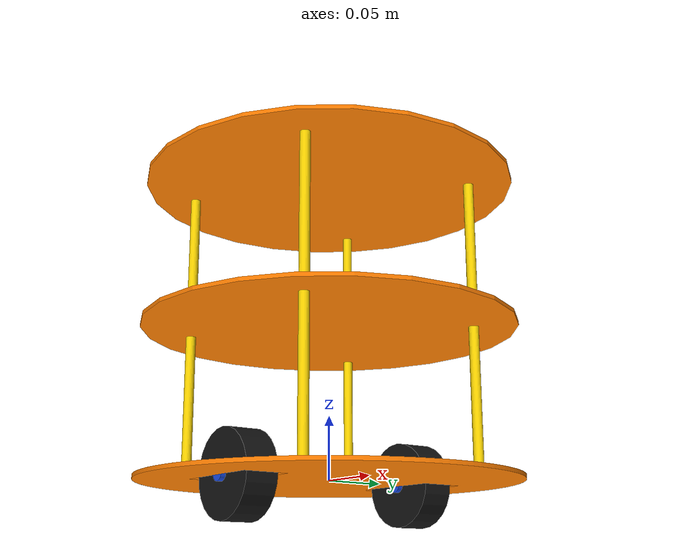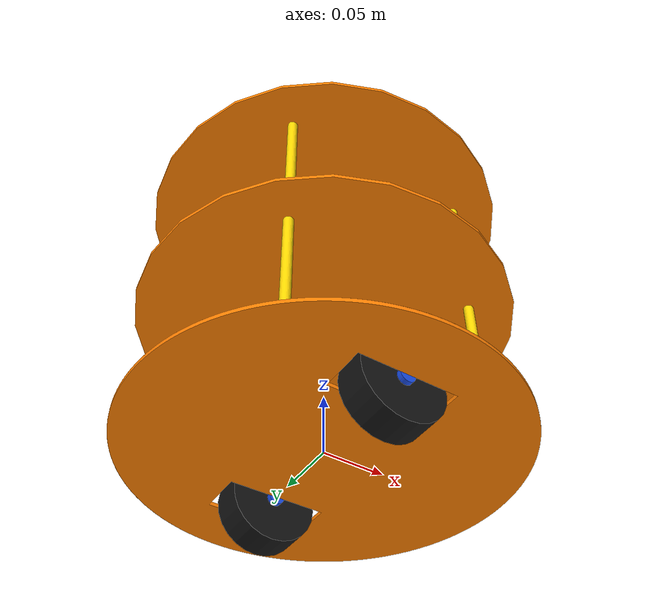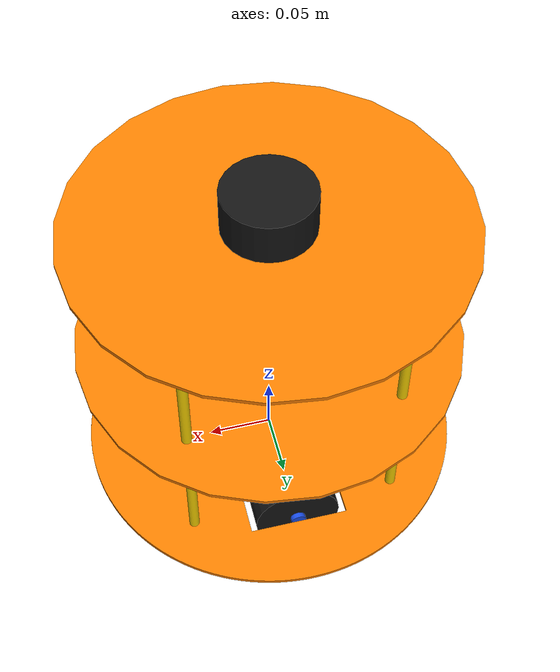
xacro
<?xml version="1.0"?>

<robot name="slam_robot" xmlns:xacro="http://www.ros.org/wiki/xacro">

  <material name="orange"><color rgba="1.0 0.5 0.0 1"/></material>
  <material name="yellow"><color rgba="1.0 0.85 0.0 1"/></material>
  <material name="black"><color rgba="0.08 0.08 0.08 1"/></material>
  <material name="blue"><color rgba="0.1 0.3 0.9 1"/></material>

  <link name="base_link">
    <visual name="level_1_plate">
      <origin xyz="0.00000 0.00000 0.00000" rpy="0 0 0"/>
      <geometry><mesh filename="package://myrobot_sim/meshes/bottom_plate.stl"/></geometry>
      <material name="orange"/>
    </visual>
    <collision name="level_1_plate_col">
      <origin xyz="0.00000 0.00000 0.00000" rpy="0 0 0"/>
      <geometry><mesh filename="package://myrobot_sim/meshes/bottom_plate.stl"/></geometry>
    </collision>
    <visual name="level_2_plate">
      <origin xyz="0.00000 0.00000 0.12000" rpy="0 0 0"/>
      <geometry><cylinder radius="0.15" length="0.00300"/></geometry>
      <material name="orange"/>
    </visual>
    <collision name="level_2_plate_col">
      <origin xyz="0.00000 0.00000 0.12000" rpy="0 0 0"/>
      <geometry><cylinder radius="0.15" length="0.00300"/></geometry>
    </collision>
    <visual name="level_3_plate">
      <origin xyz="0.00000 0.00000 0.24000" rpy="0 0 0"/>
      <geometry><cylinder radius="0.15" length="0.00300"/></geometry>
      <material name="orange"/>
    </visual>
    <collision name="level_3_plate_col">
      <origin xyz="0.00000 0.00000 0.24000" rpy="0 0 0"/>
      <geometry><cylinder radius="0.15" length="0.00300"/></geometry>
    </collision>
    <visual name="pcb_stand_1">
      <origin xyz="0.08132 0.08132 0.12000" rpy="0 0 0"/>
      <geometry><cylinder radius="0.004" length="0.24000"/></geometry>
      <material name="yellow"/>
    </visual>
    <collision name="pcb_stand_1_col">
      <origin xyz="0.08132 0.08132 0.12000" rpy="0 0 0"/>
      <geometry><cylinder radius="0.004" length="0.24000"/></geometry>
    </collision>
    <visual name="pcb_stand_2">
      <origin xyz="-0.08132 0.08132 0.12000" rpy="0 0 0"/>
      <geometry><cylinder radius="0.004" length="0.24000"/></geometry>
      <material name="yellow"/>
    </visual>
    <collision name="pcb_stand_2_col">
      <origin xyz="-0.08132 0.08132 0.12000" rpy="0 0 0"/>
      <geometry><cylinder radius="0.004" length="0.24000"/></geometry>
    </collision>
    <visual name="pcb_stand_3">
      <origin xyz="-0.08132 -0.08132 0.12000" rpy="0 0 0"/>
      <geometry><cylinder radius="0.004" length="0.24000"/></geometry>
      <material name="yellow"/>
    </visual>
    <collision name="pcb_stand_3_col">
      <origin xyz="-0.08132 -0.08132 0.12000" rpy="0 0 0"/>
      <geometry><cylinder radius="0.004" length="0.24000"/></geometry>
    </collision>
    <visual name="pcb_stand_4">
      <origin xyz="0.08132 -0.08132 0.12000" rpy="0 0 0"/>
      <geometry><cylinder radius="0.004" length="0.24000"/></geometry>
      <material name="yellow"/>
    </visual>
    <collision name="pcb_stand_4_col">
      <origin xyz="0.08132 -0.08132 0.12000" rpy="0 0 0"/>
      <geometry><cylinder radius="0.004" length="0.24000"/></geometry>
    </collision>
    <inertial>
      <origin xyz="0 0 0.12" rpy="0 0 0"/>
      <mass value="1.5"/>
      <inertia ixx="0.01564" ixy="0" ixz="0" iyy="0.01564" iyz="0" izz="0.01687"/>
    </inertial>
  </link>

  <link name="left_motor_link">
    <visual name="left_motor_tyre">
      <origin xyz="0.00000 0.00000 0.00000" rpy="1.570796 0 0"/>
      <geometry><cylinder radius="0.034" length="0.02600"/></geometry>
      <material name="black"/>
    </visual>
    <collision name="left_motor_tyre_col">
      <origin xyz="0.00000 0.00000 0.00000" rpy="1.570796 0 0"/>
      <geometry><cylinder radius="0.034" length="0.02600"/></geometry>
    </collision>
    <visual name="left_motor_axle">
      <origin xyz="0.00000 0.00000 0.00000" rpy="1.570796 0 0"/>
      <geometry><cylinder radius="0.006" length="0.03400"/></geometry>
      <material name="blue"/>
    </visual>
    <inertial>
      <mass value="0.1"/>
      <inertia ixx="0.0000345" ixy="0" ixz="0" iyy="0.0000578" iyz="0" izz="0.0000345"/>
    </inertial>
  </link>

  <link name="right_motor_link">
    <visual name="right_motor_tyre">
      <origin xyz="0.00000 0.00000 0.00000" rpy="1.570796 0 0"/>
      <geometry><cylinder radius="0.034" length="0.02600"/></geometry>
      <material name="black"/>
    </visual>
    <collision name="right_motor_tyre_col">
      <origin xyz="0.00000 0.00000 0.00000" rpy="1.570796 0 0"/>
      <geometry><cylinder radius="0.034" length="0.02600"/></geometry>
    </collision>
    <visual name="right_motor_axle">
      <origin xyz="0.00000 0.00000 0.00000" rpy="1.570796 0 0"/>
      <geometry><cylinder radius="0.006" length="0.03400"/></geometry>
      <material name="blue"/>
    </visual>
    <inertial>
      <mass value="0.1"/>
      <inertia ixx="0.0000345" ixy="0" ixz="0" iyy="0.0000578" iyz="0" izz="0.0000345"/>
    </inertial>
  </link>

  <link name="lidar_link">
    <visual name="lidar">
      <origin xyz="0.00000 0.00000 0.00000" rpy="0 0 0"/>
      <geometry><cylinder radius="0.035" length="0.03400"/></geometry>
      <material name="black"/>
    </visual>
    <collision name="lidar_col">
      <origin xyz="0.00000 0.00000 0.00000" rpy="0 0 0"/>
      <geometry><cylinder radius="0.035" length="0.03400"/></geometry>
    </collision>
    <inertial>
      <mass value="0.114"/>
      <inertia ixx="0.0000459" ixy="0" ixz="0" iyy="0.0000459" iyz="0" izz="0.0000698"/>
    </inertial>
  </link>

  <joint name="left_wheel_joint" type="continuous">
    <parent link="base_link"/>
    <child link="left_motor_link"/>
    <origin xyz="0 0.0825 0.00000" rpy="0 0 0"/>
    <axis xyz="0 1 0"/>
  </joint>

  <joint name="right_wheel_joint" type="continuous">
    <parent link="base_link"/>
    <child link="right_motor_link"/>
    <origin xyz="0 -0.0825 0.00000" rpy="0 0 0"/>
    <axis xyz="0 1 0"/>
  </joint>

  <joint name="lidar_joint" type="fixed">
    <parent link="base_link"/>
    <child link="lidar_link"/>
    <origin xyz="0 0 0.25850" rpy="0 0 0"/>
  </joint>

</robot>
